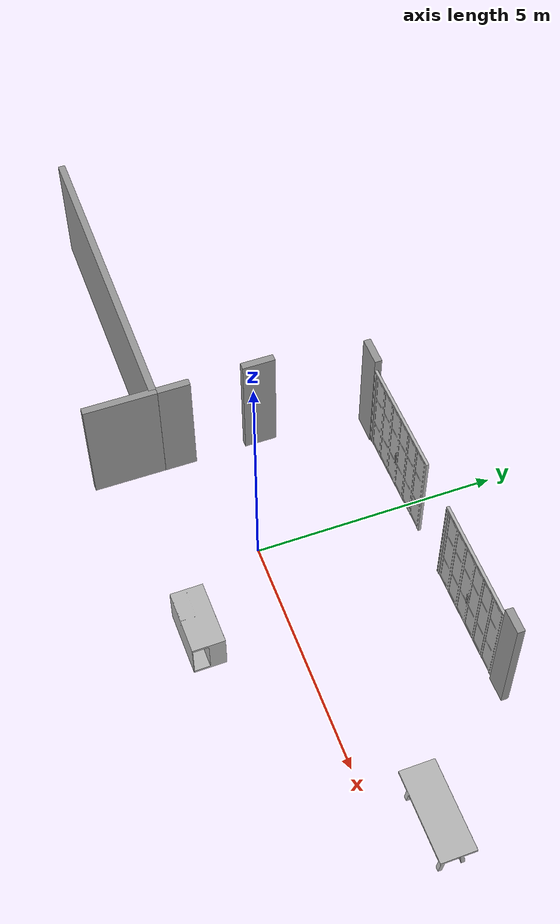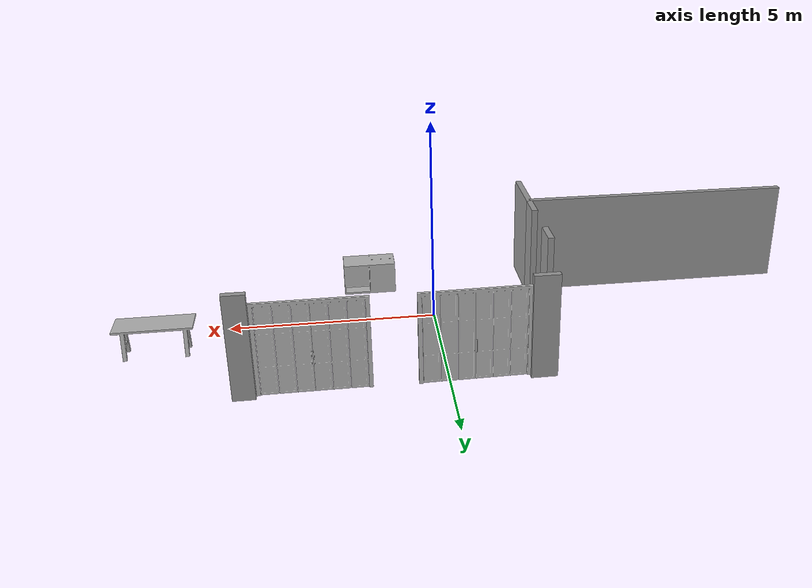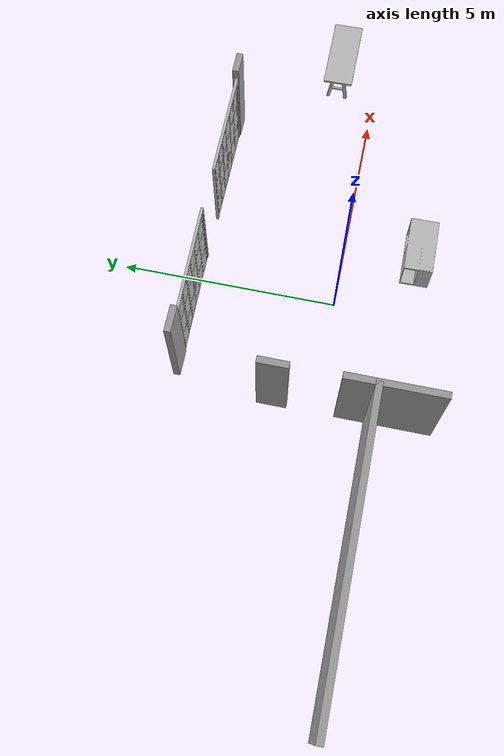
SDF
<sdf version="1.6">
 <world name="default">
  <gravity>0 0 -9.8</gravity>
  <magnetic_field>6e-06 2.3e-05 -4.2e-05</magnetic_field>
  <atmosphere type="adiabatic"/>
  <physics name="default_physics" default="0" type="ode">
   <max_step_size>0.001</max_step_size>
   <real_time_factor>1</real_time_factor>
   <real_time_update_rate>1000</real_time_update_rate>
  </physics>
  <scene>
   <ambient>0.4 0.4 0.4 1</ambient>
   <background>0.7 0.7 0.7 1</background>
   <shadows>false</shadows>
   <grid>false</grid>
   <origin_visual>false</origin_visual>
  </scene>
  <spherical_coordinates>
   <surface_model>EARTH_WGS84</surface_model>
   <latitude_deg>0</latitude_deg>
   <longitude_deg>0</longitude_deg>
   <elevation>0</elevation>
   <heading_deg>0</heading_deg>
  </spherical_coordinates>
  <model name="CoffeeTable_01_001">
   <include><uri>model://aws_robomaker_residential_CoffeeTable_01</uri></include>
   <pose>1.512301 -1.733438 0.041983 0.000000 0.000000 0.01000</pose>
  </model>
  <model name="KitchenTable_01_001">
   <include><uri>model://aws_robomaker_residential_KitchenTable_01</uri></include>
   <pose>6.55269 0.951173 -0.000006 0 -0 -1.564130</pose>
  </model>
  <model name="FoldingDoor_01_001">
   <include><uri>model://aws_robomaker_residential_FoldingDoor_01</uri></include>
   <pose>-0.564911 3.16333 0.041881 0 -0 1.583</pose>
  </model>
  <model name="FoldingDoor_01_002">
   <include><uri>model://aws_robomaker_residential_FoldingDoor_01</uri></include>
   <pose>2.92747 3.15614 0.041881 0 -0 1.57264</pose>
  </model>
  <light name="LivingRoom_CeilingLight_0" type="point">
   <pose>1.194296 4.155759 2.2 0 -0 0</pose>
   <diffuse>0.5 0.5 0.5 1</diffuse>
   <specular>0.1 0.1 0.1 1</specular>
   <attenuation>
    <range>20</range>
    <constant>0.32</constant>
    <linear>0.01</linear>
    <quadratic>0.03</quadratic>
   </attenuation>
   <cast_shadows>0</cast_shadows>
   <direction>0 0 -1</direction>
  </light>
  <light name="LivingRoom_CeilingLight_1" type="point">
   <pose>1.194296 -1.589959 2.2 0 -0 0</pose>
   <diffuse>0.5 0.5 0.5 1</diffuse>
   <specular>0.1 0.1 0.1 1</specular>
   <attenuation>
    <range>20</range>
    <constant>0.05</constant>
    <linear>0.01</linear>
    <quadratic>0.09</quadratic>
   </attenuation>
   <cast_shadows>0</cast_shadows>
   <direction>0 0 -1</direction>
  </light>
  <light name="LivingRoom_WallLight_0" type="point">
   <pose>1.76956 -5.444370 2.2 0 -0 0</pose>
   <diffuse>0.24 0.24 0.24 1</diffuse>
   <specular>0.1 0.1 0.1 1</specular>
   <attenuation>
    <range>20</range>
    <constant>0.12</constant>
    <linear>0.00</linear>
    <quadratic>0.03</quadratic>
   </attenuation>
   <direction>0 0 -1</direction>
  </light>
  <light name="LivingRoom_WallLight_1" type="point">
   <pose>-0.13826 -5.444370 2.2 0 -0 0</pose>
   <diffuse>0.24 0.24 0.24 1</diffuse>
   <specular>0.1 0.1 0.1 1</specular>
   <attenuation>
    <range>20</range>
    <constant>0.12</constant>
    <linear>0.00</linear>
    <quadratic>0.03</quadratic>
   </attenuation>
   <direction>0 0 -1</direction>
  </light>
  <light name="BedRoom_CeilingLight_0" type="point">
   <pose>-6.451061 1.126176 2.091116 0 -0 0</pose>
   <diffuse>0.5 0.5 0.5 1</diffuse>
   <specular>0.1 0.1 0.1 1</specular>
   <attenuation>
    <range>20</range>
    <constant>0.32</constant>
    <linear>0.01</linear>
    <quadratic>0.03</quadratic>
   </attenuation>
   <cast_shadows>0</cast_shadows>
   <direction>0 0 -1</direction>
  </light>
  <light name="BedRoom_CeilingLight_1" type="point">
   <pose>-6.352945 -3.416286 2.091116 0 -0 0</pose>
   <diffuse>0.5 0.5 0.5 1</diffuse>
   <specular>0.1 0.1 0.1 1</specular>
   <attenuation>
    <range>20</range>
    <constant>0.32</constant>
    <linear>0.01</linear>
    <quadratic>0.03</quadratic>
   </attenuation>
   <cast_shadows>0</cast_shadows>
   <direction>0 0 -1</direction>
  </light>
  <light name="Kitchen_CeilingLight_0" type="point">
   <pose>7.8582 -1.5905 2.280000 0 -0 0</pose>
   <diffuse>0.5 0.5 0.5 1</diffuse>
   <specular>0.1 0.1 0.1 1</specular>
   <attenuation>
    <range>20</range>
    <constant>0.3</constant>
    <linear>0.01</linear>
    <quadratic>0.01</quadratic>
   </attenuation>
   <cast_shadows>0</cast_shadows>
   <direction>0 0 -1</direction>
  </light>
  <model name="wall_01"><include><uri>model://wall_01</uri></include></model>
  <model name="wall_02"><include><uri>model://wall_02</uri></include></model>
  <model name="wall_03"><include><uri>model://wall_03</uri></include></model>
  <model name="wall_04"><include><uri>model://wall_04</uri></include></model>
  <model name="wall_05"><include><uri>model://wall_05</uri></include></model>
  <model name="wall_06"><include><uri>model://wall_06</uri></include></model>
 </world>
</sdf>

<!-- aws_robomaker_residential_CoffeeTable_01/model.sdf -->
<sdf version="1.6">
  <model name="aws_robomaker_residential_CoffeeTable_01">
    <link name="link">
      <inertial>
        <mass>21.7</mass>

        <inertia>
          <ixx>0.8137499999999998</ixx>
          <ixy>0</ixy>
          <ixz>0</ixz>
          <iyy>2.76675</iyy>
          <iyz>0</iyz>
          <izz>3.254</izz>
        </inertia>

      </inertial>

      <collision name="collision">
        <geometry>
          <mesh>
            <uri>model://aws_robomaker_residential_CoffeeTable_01/meshes/aws_CoffeeTable_01_collision.DAE</uri>
            <scale>1 1 2.5</scale>
          </mesh>
        </geometry>

        <surface>
          <contact>
            <ode>
              <max_vel>0.01</max_vel>
            </ode>
          </contact>
         </surface>
      </collision>

      <visual name="visual">
	    <geometry>
          <mesh>
            <uri>model://aws_robomaker_residential_CoffeeTable_01/meshes/aws_CoffeeTable_01_visual.DAE</uri>
            <scale>1 1 2.5</scale>
          </mesh>
        </geometry>
      <meta> <layer> 1 </layer></meta>
</visual>
    </link>
    <static>1</static>
  </model>
</sdf>

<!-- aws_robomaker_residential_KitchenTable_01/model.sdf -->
<sdf version="1.6">
  <model name="aws_robomaker_residential_KitchenTable_01">
    <link name="link">
      <inertial>
        <mass>12.3</mass>
      </inertial>
      <visual name="visual">
	    <geometry>
          <mesh>
            <uri>model://aws_robomaker_residential_KitchenTable_01/meshes/aws_KitchenTable_01_visual.DAE</uri>
          </mesh>
        </geometry>
      <meta> <layer> 1 </layer></meta>
</visual>
    </link>
  </model>
</sdf>

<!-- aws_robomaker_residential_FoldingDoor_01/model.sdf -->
<sdf version="1.6">
  <model name="aws_robomaker_residential_FoldingDoor_01">
    <link name="link">
      <inertial>
        <mass>1</mass>
      </inertial>
      <collision name="collision">
        <geometry>
          <mesh>
            <uri>model://aws_robomaker_residential_FoldingDoor_01/meshes/aws_FoldingDoor_01_collision.DAE</uri>
            <scale>1 1 1</scale>
          </mesh>
        </geometry>
      </collision>
      <collision name="collision_1">
        <pose frame=''>0 0 1.1 0 -0 0</pose>
        <geometry>
          <box>
            <size>0.1 2.5 2.2</size>
          </box>
        </geometry>
      </collision>
      <visual name="visual">
	    <geometry>
          <mesh>
            <uri>model://aws_robomaker_residential_FoldingDoor_01/meshes/aws_FoldingDoor_01_visual.DAE</uri>
          </mesh>
        </geometry>
      <meta> <layer> 2 </layer></meta>
</visual>
    </link>
	<static>1</static>
  </model>
</sdf>

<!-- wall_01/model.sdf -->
<sdf version='1.6'>
  <model name='wall_01'>
    <pose frame=''>-5.95985 -1.1921 0 0 -0 0</pose>
    <link name='Wall_0'>
      <collision name='Wall_0_Collision'>
        <geometry>
          <box>
            <size>6.75 0.15 2.5</size>
          </box>
        </geometry>
        <pose frame=''>0 0 1.25 0 -0 0</pose>
      </collision>
      <visual name='Wall_0_Visual'>
        <pose frame=''>0 0 1.25 0 -0 0</pose>
        <geometry>
          <box>
            <size>6.75 0.15 2.5</size>
          </box>
        </geometry>
        <material>
          <script>
            <uri>file://media/materials/scripts/gazebo.material</uri>
            <name>Gazebo/Grey</name>
          </script>
          <ambient>1 1 1 1</ambient>
        </material>
        <meta>
          <layer>0</layer>
        </meta>
      </visual>
      <pose frame=''>0 0 0 0 -0 0</pose>
    </link>
    <static>1</static>
  </model>
</sdf>

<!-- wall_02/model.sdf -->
<sdf version='1.6'>
  <model name='wall_02'>
    <pose frame=''>-2.60533 -1.87112 0 0 -0 0</pose>
    <link name='Wall_0'>
      <collision name='Wall_0_Collision'>
        <geometry>
          <box>
            <size>1.5 0.15 2.5</size>
          </box>
        </geometry>
        <pose frame=''>0 0 1.25 0 -0 0</pose>
      </collision>
      <visual name='Wall_0_Visual'>
        <pose frame=''>0 0 1.25 0 -0 0</pose>
        <geometry>
          <box>
            <size>1.5 0.15 2.5</size>
          </box>
        </geometry>
        <material>
          <script>
            <uri>file://media/materials/scripts/gazebo.material</uri>
            <name>Gazebo/Grey</name>
          </script>
          <ambient>1 1 1 1</ambient>
        </material>
        <meta>
          <layer>0</layer>
        </meta>
      </visual>
      <pose frame=''>0 0 0 0 -0 1.5708</pose>
    </link>
    <static>1</static>
  </model>
</sdf>

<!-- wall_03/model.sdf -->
<sdf version='1.6'>
  <model name='wall_03'>
    <pose frame=''>-2.60376 -0.790134 0 0 -0 0</pose>
    <link name='Wall_0'>
      <collision name='Wall_0_Collision'>
        <geometry>
          <box>
            <size>0.668 0.15 2.5</size>
          </box>
        </geometry>
        <pose frame=''>0 0 1.25 0 -0 0</pose>
      </collision>
      <visual name='Wall_0_Visual'>
        <pose frame=''>0 0 1.25 0 -0 0</pose>
        <geometry>
          <box>
            <size>0.668 0.15 2.5</size>
          </box>
        </geometry>
        <material>
          <script>
            <uri>file://media/materials/scripts/gazebo.material</uri>
            <name>Gazebo/Grey</name>
          </script>
          <ambient>1 1 1 1</ambient>
        </material>
        <meta>
          <layer>0</layer>
        </meta>
      </visual>
      <pose frame=''>0 0 0 0 -0 1.5708</pose>
    </link>
    <static>1</static>
  </model>
</sdf>

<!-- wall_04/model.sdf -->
<sdf version='1.6'>
  <model name='wall_04'>
    <pose frame=''>-2.61809 0.959165 0 0 -0 0</pose>
    <link name='Wall_0'>
      <collision name='Wall_0_Collision'>
        <geometry>
          <box>
            <size>0.68 0.15 2.5</size>
          </box>
        </geometry>
        <pose frame=''>0 0 1.25 0 -0 0</pose>
      </collision>
      <visual name='Wall_0_Visual'>
        <pose frame=''>0 0 1.25 0 -0 0</pose>
        <geometry>
          <box>
            <size>0.68 0.15 2.5</size>
          </box>
        </geometry>
        <material>
          <script>
            <uri>file://media/materials/scripts/gazebo.material</uri>
            <name>Gazebo/Grey</name>
          </script>
          <ambient>1 1 1 1</ambient>
        </material>
        <meta>
          <layer>0</layer>
        </meta>
      </visual>
      <pose frame=''>0 0 0 0 -0 1.5708</pose>
    </link>
    <static>1</static>
  </model>
</sdf>

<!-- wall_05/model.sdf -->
<sdf version='1.6'>
  <model name='wall_05'>
    <pose frame=''>-2.10378 3.18281 0 0 -0 0</pose>
    <link name='Wall_0'>
      <collision name='Wall_0_Collision'>
        <geometry>
          <box>
            <size>0.6 0.15 2.5</size>
          </box>
        </geometry>
        <pose frame=''>0 0 1.25 0 -0 0</pose>
      </collision>
      <visual name='Wall_0_Visual'>
        <pose frame=''>0 0 1.25 0 -0 0</pose>
        <geometry>
          <box>
            <size>0.6 0.15 2.5</size>
          </box>
        </geometry>
        <material>
          <script>
            <uri>file://media/materials/scripts/gazebo.material</uri>
            <name>Gazebo/Grey</name>
          </script>
          <ambient>1 1 1 1</ambient>
        </material>
        <meta>
          <layer>0</layer>
        </meta>
      </visual>
      <pose frame=''>0 0 0 0 -0 0</pose>
    </link>
    <static>1</static>
  </model>
</sdf>

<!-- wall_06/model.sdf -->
<sdf version='1.6'>
  <model name='wall_06'>
    <pose frame=''>4.43465 3.18847 0 0 -0 0</pose>
    <link name='Wall_2'>
      <collision name='Wall_2_Collision'>
        <geometry>
          <box>
            <size>0.5 0.15 2.5</size>
          </box>
        </geometry>
        <pose frame=''>0 0 1.25 0 -0 0</pose>
      </collision>
      <visual name='Wall_2_Visual'>
        <pose frame=''>0 0 1.25 0 -0 0</pose>
        <geometry>
          <box>
            <size>0.5 0.15 2.5</size>
          </box>
        </geometry>
        <material>
          <script>
            <uri>file://media/materials/scripts/gazebo.material</uri>
            <name>Gazebo/Grey</name>
          </script>
          <ambient>1 1 1 1</ambient>
        </material>
        <meta>
          <layer>0</layer>
        </meta>
      </visual>
      <pose frame=''>0 0 0 0 -0 3.14159</pose>
    </link>
    <static>1</static>
  </model>
</sdf>
